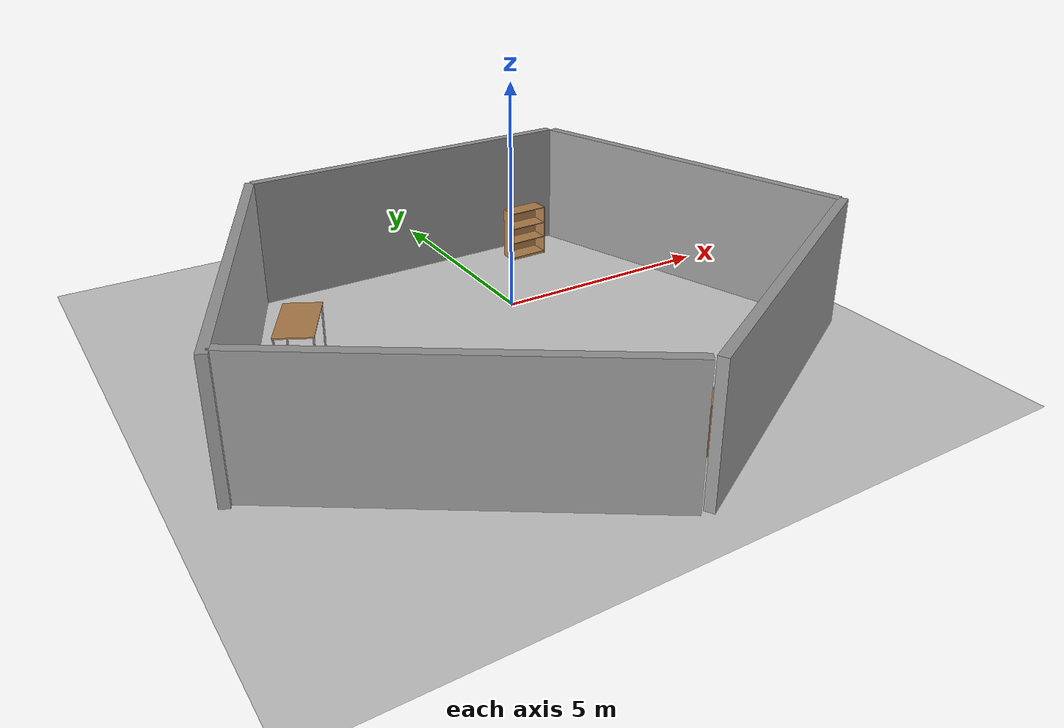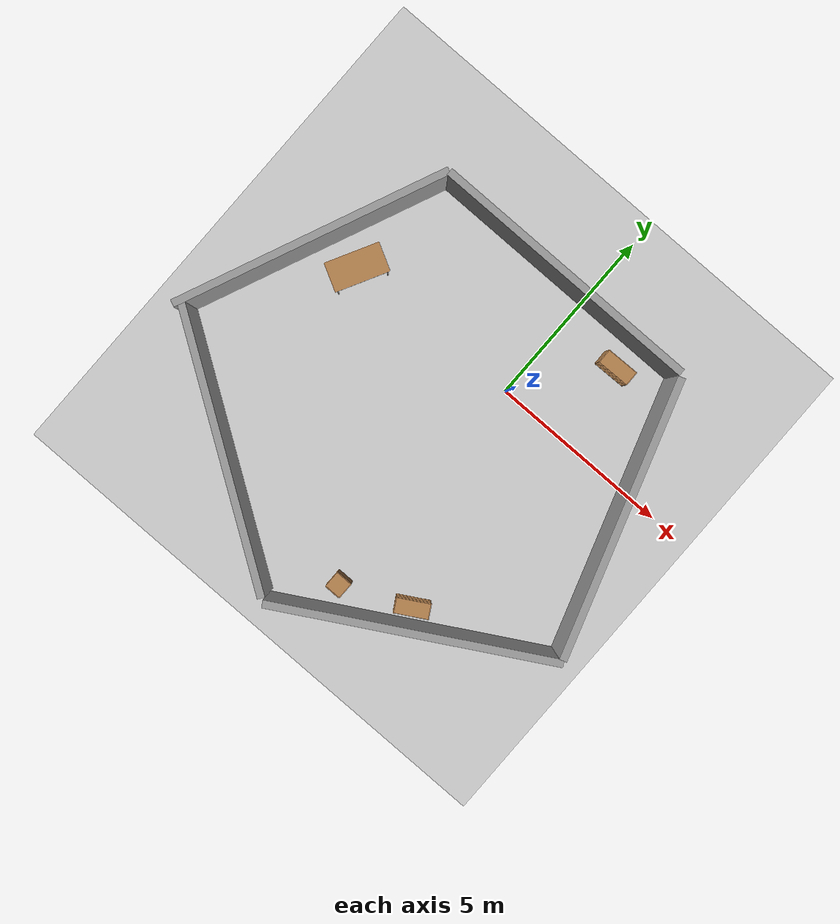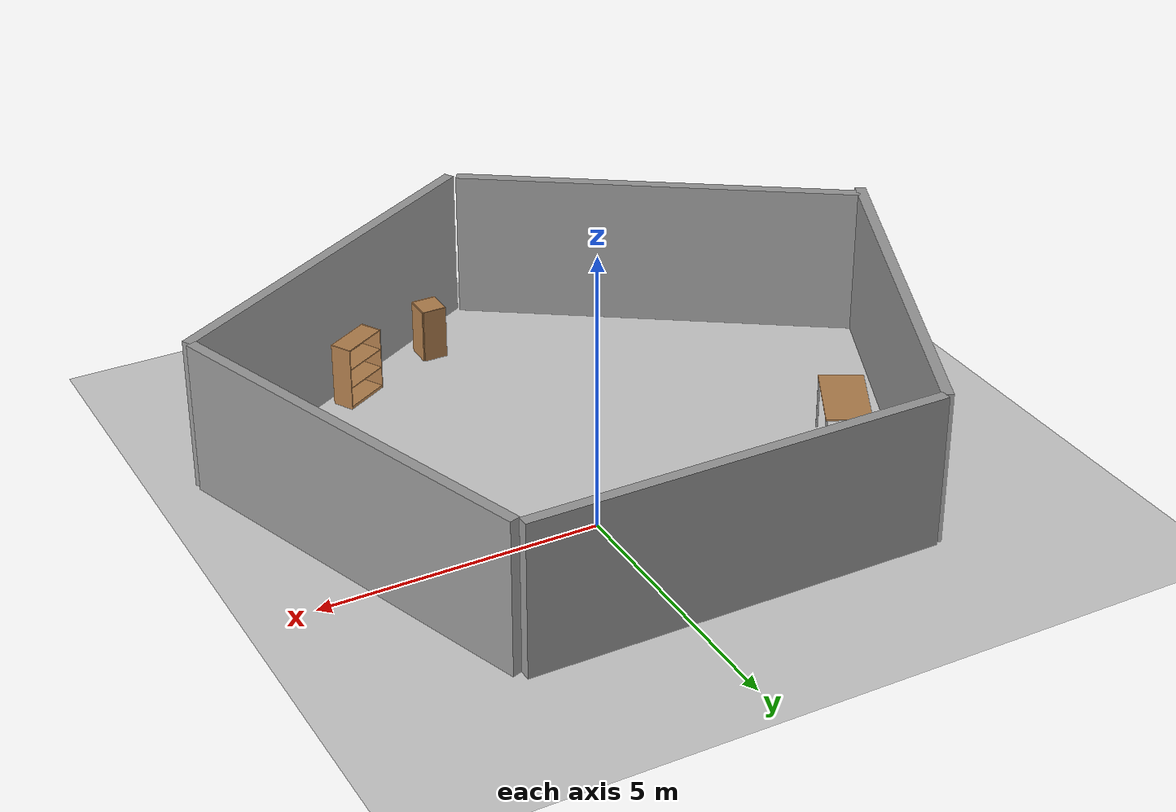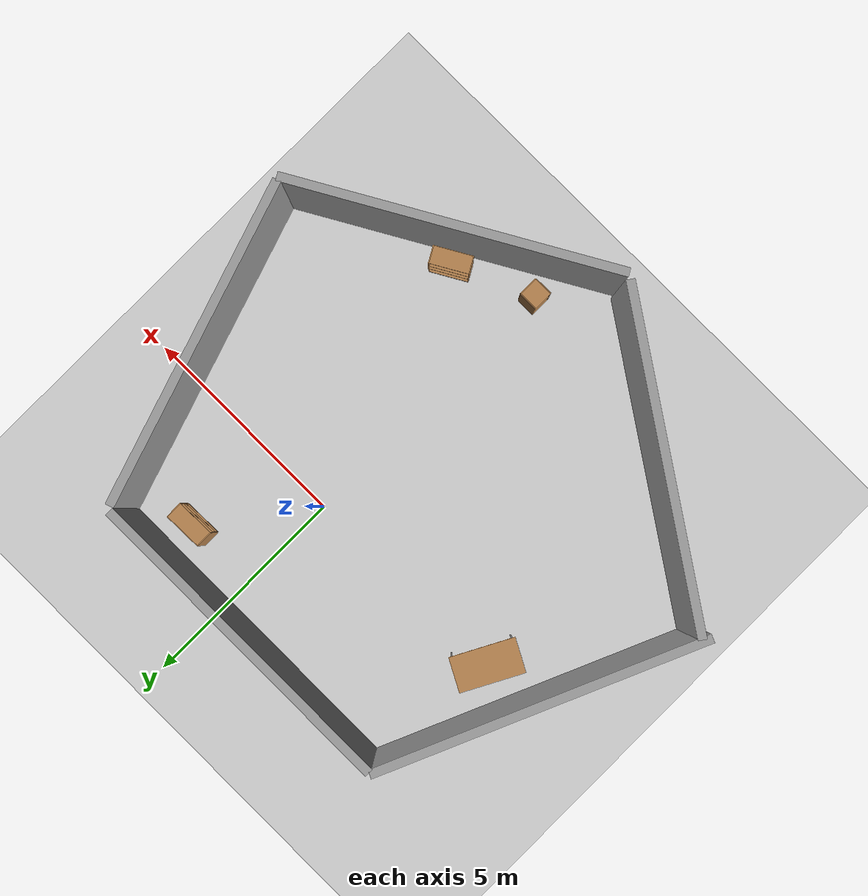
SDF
<sdf version="1.6">
 <world name="default">
  <light name="sun" type="directional">
   <pose>0 0 15 0 -0 0</pose>
   <diffuse>0.8 0.8 0.8 1</diffuse>
   <specular>0.2 0.2 0.2 1</specular>
   <attenuation>
    <range>1000</range>
    <constant>0.9</constant>
    <linear>0.01</linear>
    <quadratic>0.001</quadratic>
   </attenuation>
   <direction>-0.5 0.1 -0.9</direction>
  </light>
  <model name="ground_plane">
   <static>1</static>
   <link name="link">
    <collision name="collision">
     <geometry><plane><normal>0 0 1</normal><size>100 100</size></plane></geometry>
     <surface><friction><ode><mu>100</mu><mu2>50</mu2></ode></friction></surface>
    </collision>
    <visual name="visual">
     <transparency>1</transparency>
     <cast_shadows>0</cast_shadows>
     <geometry><plane><normal>0 0 1</normal><size>100 100</size></plane></geometry>
     <material>
      <script><uri>file://media/materials/scripts/gazebo.material</uri><name>Gazebo/Grey</name></script>
     </material>
    </visual>
   </link>
  </model>
  <gravity>0 0 -9.8</gravity>
  <magnetic_field>6e-06 2.3e-05 -4.2e-05</magnetic_field>
  <atmosphere type="adiabatic"/>
  <physics name="default_physics" default="0" type="ode">
   <max_step_size>0.001</max_step_size>
   <real_time_factor>1</real_time_factor>
   <real_time_update_rate>1000</real_time_update_rate>
  </physics>
  <scene><ambient>0.4 0.4 0.4 1</ambient><background>0.7 0.7 0.7 1</background><shadows>1</shadows></scene>
  <audio><device>default</device></audio>
  <spherical_coordinates>
   <surface_model>EARTH_WGS84</surface_model>
   <latitude_deg>0</latitude_deg>
   <longitude_deg>0</longitude_deg>
   <elevation>0</elevation>
   <heading_deg>0</heading_deg>
  </spherical_coordinates>
  <model name="grey_wall">
   <static>1</static>
   <link name="link">
    <pose>0 0 1.4 0 -0 0</pose>
    <collision name="collision"><geometry><box><size>7.5 0.2 2.8</size></box></geometry></collision>
    <visual name="visual">
     <cast_shadows>0</cast_shadows>
     <geometry><box><size>7.5 0.2 2.8</size></box></geometry>
     <material>
      <script>
       <uri>model://grey_wall/materials/scripts</uri>
       <uri>model://grey_wall/materials/textures</uri>
       <name>vrc/grey_wall</name>
      </script>
     </material>
    </visual>
   </link>
   <pose>-0.86148 3.02034 0 0 -0 0</pose>
  </model>
  <model name="grey_wall_clone_0">
   <static>1</static>
   <link name="link">
    <pose>0 0 1.4 0 -0 0</pose>
    <collision name="collision"><geometry><box><size>7.5 0.2 2.8</size></box></geometry></collision>
    <visual name="visual">
     <cast_shadows>0</cast_shadows>
     <geometry><box><size>7.5 0.2 2.8</size></box></geometry>
     <material>
      <script>
       <uri>model://grey_wall/materials/scripts</uri>
       <uri>model://grey_wall/materials/textures</uri>
       <name>vrc/grey_wall</name>
      </script>
     </material>
    </visual>
   </link>
   <pose>4.12529 -0.626545 0 0 0 -1.25533</pose>
  </model>
  <model name="grey_wall_clone_0_clone">
   <static>1</static>
   <link name="link">
    <pose>0 0 1.4 0 -0 0</pose>
    <collision name="collision"><geometry><box><size>7.5 0.2 2.8</size></box></geometry></collision>
    <visual name="visual">
     <cast_shadows>0</cast_shadows>
     <geometry><box><size>7.5 0.2 2.8</size></box></geometry>
     <material>
      <script>
       <uri>model://grey_wall/materials/scripts</uri>
       <uri>model://grey_wall/materials/textures</uri>
       <name>vrc/grey_wall</name>
      </script>
     </material>
    </visual>
   </link>
   <pose>2.08668 -6.09111 0 0 0 -2.62483</pose>
  </model>
  <model name="grey_wall_clone_0_clone_clone_0">
   <static>1</static>
   <link name="link">
    <pose>0 0 1.4 0 -0 0</pose>
    <collision name="collision"><geometry><box><size>7.5 0.2 2.8</size></box></geometry></collision>
    <visual name="visual">
     <cast_shadows>0</cast_shadows>
     <geometry><box><size>7.5 0.2 2.8</size></box></geometry>
     <material>
      <script>
       <uri>model://grey_wall/materials/scripts</uri>
       <uri>model://grey_wall/materials/textures</uri>
       <name>vrc/grey_wall</name>
      </script>
     </material>
    </visual>
   </link>
   <pose>-6.13014 -0.402224 0 0 0 -1.98068</pose>
  </model>
  <model name="grey_wall_0">
   <static>1</static>
   <link name="link">
    <pose>0 0 1.4 0 -0 0</pose>
    <collision name="collision"><geometry><box><size>7.5 0.2 2.8</size></box></geometry></collision>
    <visual name="visual">
     <cast_shadows>0</cast_shadows>
     <geometry><box><size>7.5 0.2 2.8</size></box></geometry>
     <material>
      <script>
       <uri>model://grey_wall/materials/scripts</uri>
       <uri>model://grey_wall/materials/textures</uri>
       <name>vrc/grey_wall</name>
      </script>
     </material>
    </visual>
   </link>
   <pose>-4.38868 -5.76145 0 0 -0 2.54851</pose>
  </model>
  <model name="bookshelf">
   <static>1</static>
   <link name="link">
    <inertial><mass>1</mass></inertial>
    <collision name="back">
     <pose>0 0.005 0.6 0 -0 0</pose>
     <geometry><box><size>0.9 0.01 1.2</size></box></geometry>
    </collision>
    <visual name="visual1">
     <pose>0 0.005 0.6 0 -0 0</pose>
     <geometry><box><size>0.9 0.01 1.2</size></box></geometry>
     <material>
      <script><uri>file://media/materials/scripts/gazebo.material</uri><name>Gazebo/Wood</name></script>
     </material>
    </visual>
    <collision name="left_side">
     <pose>0.45 -0.195 0.6 0 -0 0</pose>
     <geometry><box><size>0.02 0.4 1.2</size></box></geometry>
    </collision>
    <visual name="visual2">
     <pose>0.45 -0.195 0.6 0 -0 0</pose>
     <geometry><box><size>0.02 0.4 1.2</size></box></geometry>
     <material>
      <script><uri>file://media/materials/scripts/gazebo.material</uri><name>Gazebo/Wood</name></script>
     </material>
    </visual>
    <collision name="right_side">
     <pose>-0.45 -0.195 0.6 0 -0 0</pose>
     <geometry><box><size>0.02 0.4 1.2</size></box></geometry>
    </collision>
    <visual name="visual3">
     <pose>-0.45 -0.195 0.6 0 -0 0</pose>
     <geometry><box><size>0.02 0.4 1.2</size></box></geometry>
     <material>
      <script><uri>file://media/materials/scripts/gazebo.material</uri><name>Gazebo/Wood</name></script>
     </material>
    </visual>
    <collision name="bottom">
     <pose>0 -0.195 0.03 0 -0 0</pose>
     <geometry><box><size>0.88 0.4 0.06</size></box></geometry>
    </collision>
    <visual name="visual4">
     <pose>0 -0.195 0.03 0 -0 0</pose>
     <geometry><box><size>0.88 0.4 0.06</size></box></geometry>
     <material>
      <script><uri>file://media/materials/scripts/gazebo.material</uri><name>Gazebo/Wood</name></script>
     </material>
    </visual>
    <collision name="top">
     <pose>0 -0.195 1.19 0 -0 0</pose>
     <geometry><box><size>0.88 0.4 0.02</size></box></geometry>
    </collision>
    <visual name="visual5">
     <pose>0 -0.195 1.19 0 -0 0</pose>
     <geometry><box><size>0.88 0.4 0.02</size></box></geometry>
     <material>
      <script><uri>file://media/materials/scripts/gazebo.material</uri><name>Gazebo/Wood</name></script>
     </material>
    </visual>
    <collision name="low_shelf">
     <pose>0 -0.195 0.43 0 -0 0</pose>
     <geometry><box><size>0.88 0.4 0.02</size></box></geometry>
    </collision>
    <visual name="visual6">
     <pose>0 -0.195 0.43 0 -0 0</pose>
     <geometry><box><size>0.88 0.4 0.02</size></box></geometry>
     <material>
      <script><uri>file://media/materials/scripts/gazebo.material</uri><name>Gazebo/Wood</name></script>
     </material>
    </visual>
    <collision name="high_shelf">
     <pose>0 -0.195 0.8 0 -0 0</pose>
     <geometry><box><size>0.88 0.4 0.02</size></box></geometry>
    </collision>
    <visual name="visual7">
     <pose>0 -0.195 0.8 0 -0 0</pose>
     <geometry><box><size>0.88 0.4 0.02</size></box></geometry>
     <material>
      <script><uri>file://media/materials/scripts/gazebo.material</uri><name>Gazebo/Wood</name></script>
     </material>
    </visual>
   </link>
   <pose>1.71128 2.44476 0 0 -0 0.020133</pose>
  </model>
  <model name="bookshelf_0">
   <static>1</static>
   <link name="link">
    <inertial><mass>1</mass></inertial>
    <collision name="back">
     <pose>0 0.005 0.6 0 -0 0</pose>
     <geometry><box><size>0.9 0.01 1.2</size></box></geometry>
    </collision>
    <visual name="visual1">
     <pose>0 0.005 0.6 0 -0 0</pose>
     <geometry><box><size>0.9 0.01 1.2</size></box></geometry>
     <material>
      <script><uri>file://media/materials/scripts/gazebo.material</uri><name>Gazebo/Wood</name></script>
     </material>
    </visual>
    <collision name="left_side">
     <pose>0.45 -0.195 0.6 0 -0 0</pose>
     <geometry><box><size>0.02 0.4 1.2</size></box></geometry>
    </collision>
    <visual name="visual2">
     <pose>0.45 -0.195 0.6 0 -0 0</pose>
     <geometry><box><size>0.02 0.4 1.2</size></box></geometry>
     <material>
      <script><uri>file://media/materials/scripts/gazebo.material</uri><name>Gazebo/Wood</name></script>
     </material>
    </visual>
    <collision name="right_side">
     <pose>-0.45 -0.195 0.6 0 -0 0</pose>
     <geometry><box><size>0.02 0.4 1.2</size></box></geometry>
    </collision>
    <visual name="visual3">
     <pose>-0.45 -0.195 0.6 0 -0 0</pose>
     <geometry><box><size>0.02 0.4 1.2</size></box></geometry>
     <material>
      <script><uri>file://media/materials/scripts/gazebo.material</uri><name>Gazebo/Wood</name></script>
     </material>
    </visual>
    <collision name="bottom">
     <pose>0 -0.195 0.03 0 -0 0</pose>
     <geometry><box><size>0.88 0.4 0.06</size></box></geometry>
    </collision>
    <visual name="visual4">
     <pose>0 -0.195 0.03 0 -0 0</pose>
     <geometry><box><size>0.88 0.4 0.06</size></box></geometry>
     <material>
      <script><uri>file://media/materials/scripts/gazebo.material</uri><name>Gazebo/Wood</name></script>
     </material>
    </visual>
    <collision name="top">
     <pose>0 -0.195 1.19 0 -0 0</pose>
     <geometry><box><size>0.88 0.4 0.02</size></box></geometry>
    </collision>
    <visual name="visual5">
     <pose>0 -0.195 1.19 0 -0 0</pose>
     <geometry><box><size>0.88 0.4 0.02</size></box></geometry>
     <material>
      <script><uri>file://media/materials/scripts/gazebo.material</uri><name>Gazebo/Wood</name></script>
     </material>
    </visual>
    <collision name="low_shelf">
     <pose>0 -0.195 0.43 0 -0 0</pose>
     <geometry><box><size>0.88 0.4 0.02</size></box></geometry>
    </collision>
    <visual name="visual6">
     <pose>0 -0.195 0.43 0 -0 0</pose>
     <geometry><box><size>0.88 0.4 0.02</size></box></geometry>
     <material>
      <script><uri>file://media/materials/scripts/gazebo.material</uri><name>Gazebo/Wood</name></script>
     </material>
    </visual>
    <collision name="high_shelf">
     <pose>0 -0.195 0.8 0 -0 0</pose>
     <geometry><box><size>0.88 0.4 0.02</size></box></geometry>
    </collision>
    <visual name="visual7">
     <pose>0 -0.195 0.8 0 -0 0</pose>
     <geometry><box><size>0.88 0.4 0.02</size></box></geometry>
     <material>
      <script><uri>file://media/materials/scripts/gazebo.material</uri><name>Gazebo/Wood</name></script>
     </material>
    </visual>
   </link>
   <pose>1.86559 -5.90944 0 0 0 -2.62324</pose>
  </model>
  <model name="table">
   <static>1</static>
   <link name="link">
    <collision name="surface">
     <pose>0 0 1 0 -0 0</pose>
     <geometry><box><size>1.5 0.8 0.03</size></box></geometry>
     <surface><friction><ode><mu>0.6</mu><mu2>0.6</mu2></ode></friction></surface>
    </collision>
    <visual name="visual1">
     <pose>0 0 1 0 -0 0</pose>
     <geometry><box><size>1.5 0.8 0.03</size></box></geometry>
     <material>
      <script><uri>file://media/materials/scripts/gazebo.material</uri><name>Gazebo/Wood</name></script>
     </material>
    </visual>
    <collision name="front_left_leg">
     <pose>0.68 0.38 0.5 0 -0 0</pose>
     <geometry><cylinder><radius>0.02</radius><length>1</length></cylinder></geometry>
    </collision>
    <visual name="front_left_leg">
     <pose>0.68 0.38 0.5 0 -0 0</pose>
     <geometry><cylinder><radius>0.02</radius><length>1</length></cylinder></geometry>
     <material>
      <script><uri>file://media/materials/scripts/gazebo.material</uri><name>Gazebo/Grey</name></script>
     </material>
    </visual>
    <collision name="front_right_leg">
     <pose>0.68 -0.38 0.5 0 -0 0</pose>
     <geometry><cylinder><radius>0.02</radius><length>1</length></cylinder></geometry>
    </collision>
    <visual name="front_right_leg">
     <pose>0.68 -0.38 0.5 0 -0 0</pose>
     <geometry><cylinder><radius>0.02</radius><length>1</length></cylinder></geometry>
     <material>
      <script><uri>file://media/materials/scripts/gazebo.material</uri><name>Gazebo/Grey</name></script>
     </material>
    </visual>
    <collision name="back_right_leg">
     <pose>-0.68 -0.38 0.5 0 -0 0</pose>
     <geometry><cylinder><radius>0.02</radius><length>1</length></cylinder></geometry>
    </collision>
    <visual name="back_right_leg">
     <pose>-0.68 -0.38 0.5 0 -0 0</pose>
     <geometry><cylinder><radius>0.02</radius><length>1</length></cylinder></geometry>
     <material>
      <script><uri>file://media/materials/scripts/gazebo.material</uri><name>Gazebo/Grey</name></script>
     </material>
    </visual>
    <collision name="back_left_leg">
     <pose>-0.68 0.38 0.5 0 -0 0</pose>
     <geometry><cylinder><radius>0.02</radius><length>1</length></cylinder></geometry>
    </collision>
    <visual name="back_left_leg">
     <pose>-0.68 0.38 0.5 0 -0 0</pose>
     <geometry><cylinder><radius>0.02</radius><length>1</length></cylinder></geometry>
     <material>
      <script><uri>file://media/materials/scripts/gazebo.material</uri><name>Gazebo/Grey</name></script>
     </material>
    </visual>
   </link>
   <pose>-4.92799 -0.133498 0 0 -0 1.08224</pose>
  </model>
  <model name="cabinet">
   <static>1</static>
   <link name="cabinet_bottom_plate">
    <inertial>
     <pose>0 0 -1 0 -0 0</pose>
     <inertia><ixx>2.05</ixx><ixy>0</ixy><ixz>0</ixz><iyy>2.05</iyy><iyz>0</iyz><izz>2.05</izz></inertia>
     <mass>25</mass>
    </inertial>
    <collision name="cabinet_bottom_plate_geom">
     <pose>0 0 0.01 0 -0 0</pose>
     <geometry><box><size>0.45 0.45 0.02</size></box></geometry>
    </collision>
    <visual name="cabinet_bottom_plate_geom_visual">
     <pose>0 0 0.01 0 -0 0</pose>
     <geometry><box><size>0.45 0.45 0.02</size></box></geometry>
     <material>
      <script><uri>file://media/materials/scripts/gazebo.material</uri><name>Gazebo/Wood</name></script>
     </material>
    </visual>
    <collision name="cabinet_bottom_plate_geom_cabinet_back_plate">
     <pose>0.235 0 0.51 0 -0 0</pose>
     <geometry><box><size>0.02 0.45 1.02</size></box></geometry>
    </collision>
    <visual name="cabinet_bottom_plate_geom_cabinet_back_plate_visual">
     <pose>0.235 0 0.51 0 -0 0</pose>
     <geometry><box><size>0.02 0.45 1.02</size></box></geometry>
     <material>
      <script><uri>file://media/materials/scripts/gazebo.material</uri><name>Gazebo/Wood</name></script>
     </material>
    </visual>
    <collision name="cabinet_bottom_plate_geom_cabinet_left_plate">
     <pose>0 0.235 0.51 0 -0 0</pose>
     <geometry><box><size>0.45 0.02 1.02</size></box></geometry>
    </collision>
    <visual name="cabinet_bottom_plate_geom_cabinet_left_plate_visual">
     <pose>0 0.235 0.51 0 -0 0</pose>
     <geometry><box><size>0.45 0.02 1.02</size></box></geometry>
     <material>
      <script><uri>file://media/materials/scripts/gazebo.material</uri><name>Gazebo/Wood</name></script>
     </material>
    </visual>
    <collision name="cabinet_bottom_plate_geom_cabinet_middle_plate">
     <pose>0 0 0.51 0 -0 0</pose>
     <geometry><box><size>0.45 0.45 0.02</size></box></geometry>
    </collision>
    <visual name="cabinet_bottom_plate_geom_cabinet_middle_plate_visual">
     <pose>0 0 0.51 0 -0 0</pose>
     <geometry><box><size>0.45 0.45 0.02</size></box></geometry>
     <material>
      <script><uri>file://media/materials/scripts/gazebo.material</uri><name>Gazebo/Wood</name></script>
     </material>
    </visual>
    <collision name="cabinet_bottom_plate_geom_cabinet_right_plate">
     <pose>0 -0.235 0.51 0 -0 0</pose>
     <geometry><box><size>0.45 0.02 1.02</size></box></geometry>
    </collision>
    <visual name="cabinet_bottom_plate_geom_cabinet_right_plate_visual">
     <pose>0 -0.235 0.51 0 -0 0</pose>
     <geometry><box><size>0.45 0.02 1.02</size></box></geometry>
     <material>
      <script><uri>file://media/materials/scripts/gazebo.material</uri><name>Gazebo/Wood</name></script>
     </material>
    </visual>
    <collision name="cabinet_bottom_plate_geom_cabinet_top_plate">
     <pose>0 0 1.01 0 -0 0</pose>
     <geometry><box><size>0.45 0.45 0.02</size></box></geometry>
    </collision>
    <visual name="cabinet_bottom_plate_geom_cabinet_top_plate_visual">
     <pose>0 0 1.01 0 -0 0</pose>
     <geometry><box><size>0.45 0.45 0.02</size></box></geometry>
     <material>
      <script><uri>file://media/materials/scripts/gazebo.material</uri><name>Gazebo/Wood</name></script>
     </material>
    </visual>
   </link>
   <pose>-0.027186 -6.52869 0 0 -0 0</pose>
  </model>
 </world>
</sdf>
